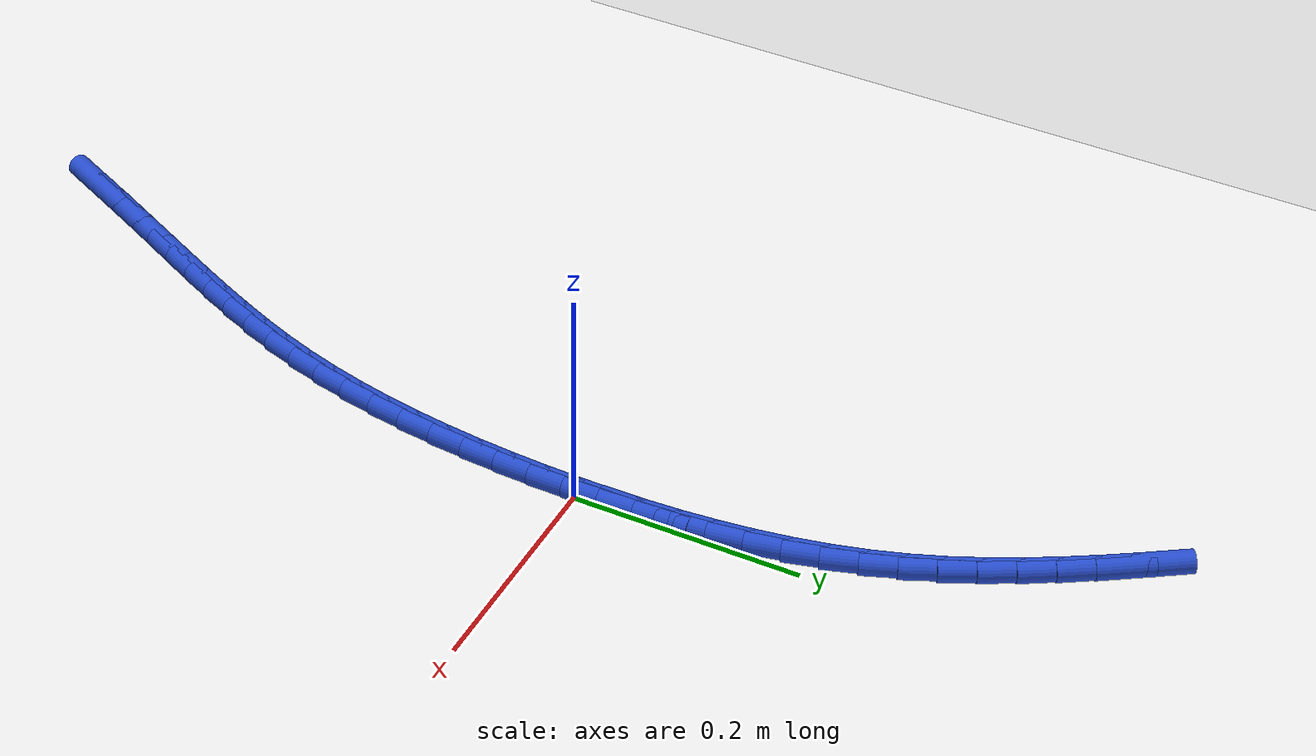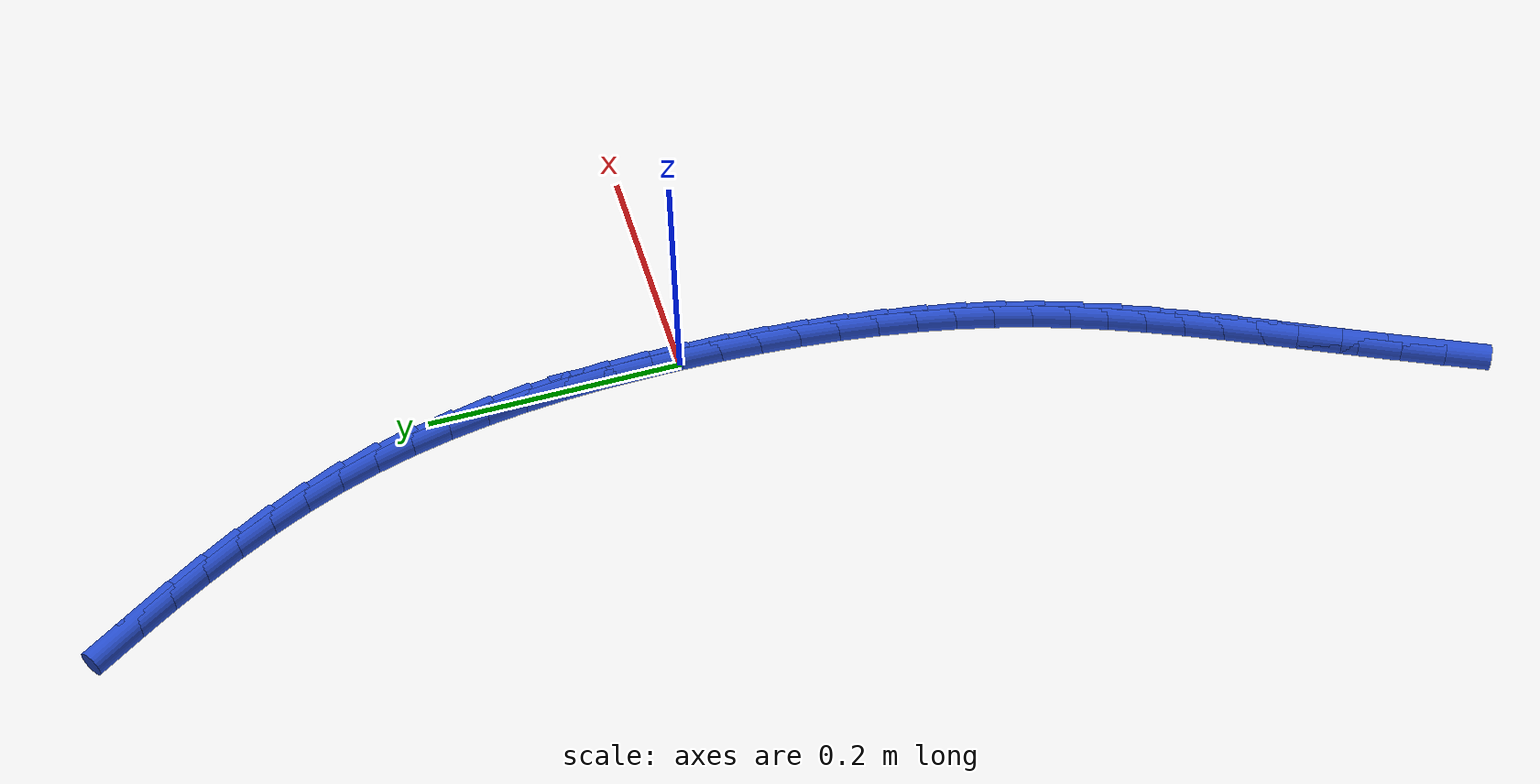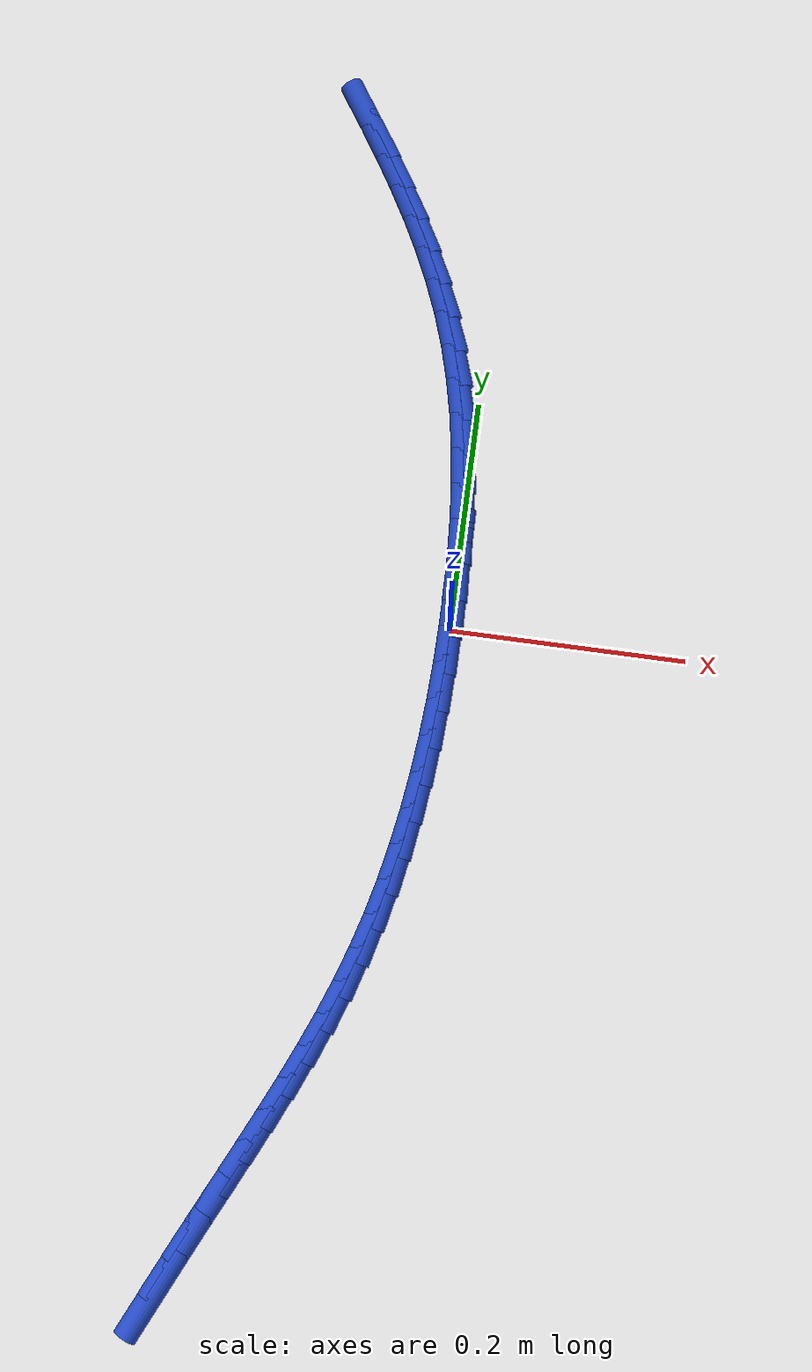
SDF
<sdf version="1.6">
 <world name="default">
  <model name="ground_plane">
   <static>1</static>
   <link name="link">
    <collision name="collision">
     <geometry><plane><normal>0 0 1</normal><size>100 100</size></plane></geometry>
     <surface><friction><ode><mu>100</mu><mu2>50</mu2></ode></friction></surface>
    </collision>
    <visual name="visual">
     <cast_shadows>0</cast_shadows>
     <geometry><plane><normal>0 0 1</normal><size>100 100</size></plane></geometry>
     <material>
      <script><uri>file://media/materials/scripts/gazebo.material</uri><name>Gazebo/WhiteGlow</name></script>
     </material>
    </visual>
   </link>
  </model>
  <model name="line">
   <link name="link_0">
    <pose>-1.951563910473908e-17 -4.163336342344337e-17 0.01 0 1.57 1.5705371974184643</pose>
    <collision name="collision">
     <geometry><cylinder><radius>0.01</radius><length>0.08</length></cylinder></geometry>
    </collision>
    <visual name="visual">
     <material>
      <script><name>Gazebo/Blue</name><uri>file://media/materials/scripts/gazebo.material</uri></script>
     </material>
     <geometry><cylinder><radius>0.01</radius><length>0.08</length></cylinder></geometry>
    </visual>
   </link>
   <link name="link_1">
    <pose>8.212343900721934e-06 0.031692059889147944 0.01 0 1.57 -1.544542658793325</pose>
    <collision name="collision">
     <geometry><cylinder><radius>0.01</radius><length>0.08</length></cylinder></geometry>
    </collision>
    <visual name="visual">
     <material>
      <script><name>Gazebo/Blue</name><uri>file://media/materials/scripts/gazebo.material</uri></script>
     </material>
     <geometry><cylinder><radius>0.01</radius><length>0.08</length></cylinder></geometry>
    </visual>
   </link>
   <link name="link_2">
    <pose>-0.0008220711203679883 0.06331022068938982 0.01 0 1.57 -1.5143118049299686</pose>
    <collision name="collision">
     <geometry><cylinder><radius>0.01</radius><length>0.08</length></cylinder></geometry>
    </collision>
    <visual name="visual">
     <material>
      <script><name>Gazebo/Blue</name><uri>file://media/materials/scripts/gazebo.material</uri></script>
     </material>
     <geometry><cylinder><radius>0.01</radius><length>0.08</length></cylinder></geometry>
    </visual>
   </link>
   <link name="link_3">
    <pose>-0.002601419941744138 0.09477824098731115 0.01 0 1.57 -1.4801734309110282</pose>
    <collision name="collision">
     <geometry><cylinder><radius>0.01</radius><length>0.08</length></cylinder></geometry>
    </collision>
    <visual name="visual">
     <material>
      <script><name>Gazebo/Blue</name><uri>file://media/materials/scripts/gazebo.material</uri></script>
     </material>
     <geometry><cylinder><radius>0.01</radius><length>0.08</length></cylinder></geometry>
    </visual>
   </link>
   <link name="link_4">
    <pose>-0.005440403669165712 0.12601987936949752 0.01 0 1.57 -1.4419308487469762</pose>
    <collision name="collision">
     <geometry><cylinder><radius>0.01</radius><length>0.08</length></cylinder></geometry>
    </collision>
    <visual name="visual">
     <material>
      <script><name>Gazebo/Blue</name><uri>file://media/materials/scripts/gazebo.material</uri></script>
     </material>
     <geometry><cylinder><radius>0.01</radius><length>0.08</length></cylinder></geometry>
    </visual>
   </link>
   <link name="link_5">
    <pose>-0.0094495918515707 0.15695889442253444 0.01 0 1.57 -1.3993947894230232</pose>
    <collision name="collision">
     <geometry><cylinder><radius>0.01</radius><length>0.08</length></cylinder></geometry>
    </collision>
    <visual name="visual">
     <material>
      <script><name>Gazebo/Blue</name><uri>file://media/materials/scripts/gazebo.material</uri></script>
     </material>
     <geometry><cylinder><radius>0.01</radius><length>0.08</length></cylinder></geometry>
    </visual>
   </link>
   <link name="link_6">
    <pose>-0.014739554037897094 0.18751904473300757 0.01 0 1.57 -1.3524029153831982</pose>
    <collision name="collision">
     <geometry><cylinder><radius>0.01</radius><length>0.08</length></cylinder></geometry>
    </collision>
    <visual name="visual">
     <material>
      <script><name>Gazebo/Blue</name><uri>file://media/materials/scripts/gazebo.material</uri></script>
     </material>
     <geometry><cylinder><radius>0.01</radius><length>0.08</length></cylinder></geometry>
    </visual>
   </link>
   <link name="link_7">
    <pose>-0.021420859777082874 0.2176240888875024 0.01 0 1.57 -1.3008447680953683</pose>
    <collision name="collision">
     <geometry><cylinder><radius>0.01</radius><length>0.08</length></cylinder></geometry>
    </collision>
    <visual name="visual">
     <material>
      <script><name>Gazebo/Blue</name><uri>file://media/materials/scripts/gazebo.material</uri></script>
     </material>
     <geometry><cylinder><radius>0.01</radius><length>0.08</length></cylinder></geometry>
    </visual>
   </link>
   <link name="link_8">
    <pose>-0.029604078618066028 0.24719778547260457 0.01 0 1.57 -1.2447116623426444</pose>
    <collision name="collision">
     <geometry><cylinder><radius>0.01</radius><length>0.08</length></cylinder></geometry>
    </collision>
    <visual name="visual">
     <material>
      <script><name>Gazebo/Blue</name><uri>file://media/materials/scripts/gazebo.material</uri></script>
     </material>
     <geometry><cylinder><radius>0.01</radius><length>0.08</length></cylinder></geometry>
    </visual>
   </link>
   <link name="link_9">
    <pose>-0.039399236199092365 0.2761641717820654 0.01 0 1.57 -1.1873448098321608</pose>
    <collision name="collision">
     <geometry><cylinder><radius>0.01</radius><length>0.08</length></cylinder></geometry>
    </collision>
    <visual name="visual">
     <material>
      <script><name>Gazebo/Blue</name><uri>file://media/materials/scripts/gazebo.material</uri></script>
     </material>
     <geometry><cylinder><radius>0.01</radius><length>0.08</length></cylinder></geometry>
    </visual>
   </link>
   <link name="link_10">
    <pose>-0.050827574350092074 0.3044927791290657 0.01 0 1.57 -1.1358392322446857</pose>
    <collision name="collision">
     <geometry><cylinder><radius>0.01</radius><length>0.08</length></cylinder></geometry>
    </collision>
    <visual name="visual">
     <material>
      <script><name>Gazebo/Blue</name><uri>file://media/materials/scripts/gazebo.material</uri></script>
     </material>
     <geometry><cylinder><radius>0.01</radius><length>0.08</length></cylinder></geometry>
    </visual>
   </link>
   <link name="link_11">
    <pose>-0.06372391498145809 0.3322486629049067 0.01 0 1.57 -1.0912678068649493</pose>
    <collision name="collision">
     <geometry><cylinder><radius>0.01</radius><length>0.08</length></cylinder></geometry>
    </collision>
    <visual name="visual">
     <material>
      <script><name>Gazebo/Blue</name><uri>file://media/materials/scripts/gazebo.material</uri></script>
     </material>
     <geometry><cylinder><radius>0.01</radius><length>0.08</length></cylinder></geometry>
    </visual>
   </link>
   <link name="link_12">
    <pose>-0.07789957081152395 0.3595089249276038 0.01 0 1.57 -1.0536705645381108</pose>
    <collision name="collision">
     <geometry><cylinder><radius>0.01</radius><length>0.08</length></cylinder></geometry>
    </collision>
    <visual name="visual">
     <material>
      <script><name>Gazebo/Blue</name><uri>file://media/materials/scripts/gazebo.material</uri></script>
     </material>
     <geometry><cylinder><radius>0.01</radius><length>0.08</length></cylinder></geometry>
    </visual>
   </link>
   <link name="link_13">
    <pose>-0.09316585455862321 0.3863506670151728 0.01 0 1.57 -1.0229730755737085</pose>
    <collision name="collision">
     <geometry><cylinder><radius>0.01</radius><length>0.08</length></cylinder></geometry>
    </collision>
    <visual name="visual">
     <material>
      <script><name>Gazebo/Blue</name><uri>file://media/materials/scripts/gazebo.material</uri></script>
     </material>
     <geometry><cylinder><radius>0.01</radius><length>0.08</length></cylinder></geometry>
    </visual>
   </link>
   <link name="link_14">
    <pose>-0.10933407894108954 0.4128509909856296 0.01 0 1.57 -0.9990416596619754</pose>
    <collision name="collision">
     <geometry><cylinder><radius>0.01</radius><length>0.08</length></cylinder></geometry>
    </collision>
    <visual name="visual">
     <material>
      <script><name>Gazebo/Blue</name><uri>file://media/materials/scripts/gazebo.material</uri></script>
     </material>
     <geometry><cylinder><radius>0.01</radius><length>0.08</length></cylinder></geometry>
    </visual>
   </link>
   <link name="link_15">
    <pose>-0.12621555667725648 0.4390869986569897 0.01 0 1.57 -0.9817265611187472</pose>
    <collision name="collision">
     <geometry><cylinder><radius>0.01</radius><length>0.08</length></cylinder></geometry>
    </collision>
    <visual name="visual">
     <material>
      <script><name>Gazebo/Blue</name><uri>file://media/materials/scripts/gazebo.material</uri></script>
     </material>
     <geometry><cylinder><radius>0.01</radius><length>0.08</length></cylinder></geometry>
    </visual>
   </link>
   <link name="link_211">
    <pose>-0.16684450024344066 -0.5647616107127897 0.01 0 1.57 1.131905467751223</pose>
    <collision name="collision">
     <geometry><cylinder><radius>0.01</radius><length>0.08</length></cylinder></geometry>
    </collision>
    <visual name="visual">
     <material>
      <script><name>Gazebo/Blue</name><uri>file://media/materials/scripts/gazebo.material</uri></script>
     </material>
     <geometry><cylinder><radius>0.01</radius><length>0.08</length></cylinder></geometry>
    </visual>
   </link>
   <link name="link_212">
    <pose>-0.15206288371631937 -0.5332729244243486 0.01 0 1.57 1.1263343430031896</pose>
    <collision name="collision">
     <geometry><cylinder><radius>0.01</radius><length>0.08</length></cylinder></geometry>
    </collision>
    <visual name="visual">
     <material>
      <script><name>Gazebo/Blue</name><uri>file://media/materials/scripts/gazebo.material</uri></script>
     </material>
     <geometry><cylinder><radius>0.01</radius><length>0.08</length></cylinder></geometry>
    </visual>
   </link>
   <link name="link_213">
    <pose>-0.13750055479991677 -0.5026954032184182 0.01 0 1.57 1.1204173390378642</pose>
    <collision name="collision">
     <geometry><cylinder><radius>0.01</radius><length>0.08</length></cylinder></geometry>
    </collision>
    <visual name="visual">
     <material>
      <script><name>Gazebo/Blue</name><uri>file://media/materials/scripts/gazebo.material</uri></script>
     </material>
     <geometry><cylinder><radius>0.01</radius><length>0.08</length></cylinder></geometry>
    </visual>
   </link>
   <link name="link_214">
    <pose>-0.12317836683817429 -0.4730748875137646 0.01 0 1.57 1.1198262063792375</pose>
    <collision name="collision">
     <geometry><cylinder><radius>0.01</radius><length>0.08</length></cylinder></geometry>
    </collision>
    <visual name="visual">
     <material>
      <script><name>Gazebo/Blue</name><uri>file://media/materials/scripts/gazebo.material</uri></script>
     </material>
     <geometry><cylinder><radius>0.01</radius><length>0.08</length></cylinder></geometry>
    </visual>
   </link>
   <link name="link_215">
    <pose>-0.10920619134921244 -0.4442217860261319 0.01 0 1.57 1.1251882159066409</pose>
    <collision name="collision">
     <geometry><cylinder><radius>0.01</radius><length>0.08</length></cylinder></geometry>
    </collision>
    <visual name="visual">
     <material>
      <script><name>Gazebo/Blue</name><uri>file://media/materials/scripts/gazebo.material</uri></script>
     </material>
     <geometry><cylinder><radius>0.01</radius><length>0.08</length></cylinder></geometry>
    </visual>
   </link>
   <link name="link_216">
    <pose>-0.09569682060922814 -0.4159387827672495 0.01 0 1.57 1.1368497751191253</pose>
    <collision name="collision">
     <geometry><cylinder><radius>0.01</radius><length>0.08</length></cylinder></geometry>
    </collision>
    <visual name="visual">
     <material>
      <script><name>Gazebo/Blue</name><uri>file://media/materials/scripts/gazebo.material</uri></script>
     </material>
     <geometry><cylinder><radius>0.01</radius><length>0.08</length></cylinder></geometry>
    </visual>
   </link>
   <link name="link_217">
    <pose>-0.08276304689441714 -0.3880285617488439 0.01 0 1.57 1.1550186541389371</pose>
    <collision name="collision">
     <geometry><cylinder><radius>0.01</radius><length>0.08</length></cylinder></geometry>
    </collision>
    <visual name="visual">
     <material>
      <script><name>Gazebo/Blue</name><uri>file://media/materials/scripts/gazebo.material</uri></script>
     </material>
     <geometry><cylinder><radius>0.01</radius><length>0.08</length></cylinder></geometry>
    </visual>
   </link>
   <link name="link_218">
    <pose>-0.07051766248097559 -0.36029380698264296 0.01 0 1.57 1.1797269103388053</pose>
    <collision name="collision">
     <geometry><cylinder><radius>0.01</radius><length>0.08</length></cylinder></geometry>
    </collision>
    <visual name="visual">
     <material>
      <script><name>Gazebo/Blue</name><uri>file://media/materials/scripts/gazebo.material</uri></script>
     </material>
     <geometry><cylinder><radius>0.01</radius><length>0.08</length></cylinder></geometry>
    </visual>
   </link>
   <link name="link_219">
    <pose>-0.059073459645099365 -0.33253720248037333 0.01 0 1.57 1.2107941573119678</pose>
    <collision name="collision">
     <geometry><cylinder><radius>0.01</radius><length>0.08</length></cylinder></geometry>
    </collision>
    <visual name="visual">
     <material>
      <script><name>Gazebo/Blue</name><uri>file://media/materials/scripts/gazebo.material</uri></script>
     </material>
     <geometry><cylinder><radius>0.01</radius><length>0.08</length></cylinder></geometry>
    </visual>
   </link>
   <link name="link_220">
    <pose>-0.04854323066298516 -0.30456143225376386 0.01 0 1.57 1.2477980296532662</pose>
    <collision name="collision">
     <geometry><cylinder><radius>0.01</radius><length>0.08</length></cylinder></geometry>
    </collision>
    <visual name="visual">
     <material>
      <script><name>Gazebo/Blue</name><uri>file://media/materials/scripts/gazebo.material</uri></script>
     </material>
     <geometry><cylinder><radius>0.01</radius><length>0.08</length></cylinder></geometry>
    </visual>
   </link>
   <link name="link_221">
    <pose>-0.039039767810828886 -0.2761691803145417 0.01 0 1.57 1.2894584269627019</pose>
    <collision name="collision">
     <geometry><cylinder><radius>0.01</radius><length>0.08</length></cylinder></geometry>
    </collision>
    <visual name="visual">
     <material>
      <script><name>Gazebo/Blue</name><uri>file://media/materials/scripts/gazebo.material</uri></script>
     </material>
     <geometry><cylinder><radius>0.01</radius><length>0.08</length></cylinder></geometry>
    </visual>
   </link>
   <link name="link_222">
    <pose>-0.030663094926508185 -0.24718449518370067 0.01 0 1.57 1.3304297999846177</pose>
    <collision name="collision">
     <geometry><cylinder><radius>0.01</radius><length>0.08</length></cylinder></geometry>
    </collision>
    <visual name="visual">
     <material>
      <script><name>Gazebo/Blue</name><uri>file://media/materials/scripts/gazebo.material</uri></script>
     </material>
     <geometry><cylinder><radius>0.01</radius><length>0.08</length></cylinder></geometry>
    </visual>
   </link>
   <link name="link_223">
    <pose>-0.02341198646264128 -0.21760083869462668 0.01 0 1.57 1.3685100285019347</pose>
    <collision name="collision">
     <geometry><cylinder><radius>0.01</radius><length>0.08</length></cylinder></geometry>
    </collision>
    <visual name="visual">
     <material>
      <script><name>Gazebo/Blue</name><uri>file://media/materials/scripts/gazebo.material</uri></script>
     </material>
     <geometry><cylinder><radius>0.01</radius><length>0.08</length></cylinder></geometry>
    </visual>
   </link>
   <link name="link_224">
    <pose>-0.01723699613430328 -0.1874923569718011 0.01 0 1.57 1.4038809896141797</pose>
    <collision name="collision">
     <geometry><cylinder><radius>0.01</radius><length>0.08</length></cylinder></geometry>
    </collision>
    <visual name="visual">
     <material>
      <script><name>Gazebo/Blue</name><uri>file://media/materials/scripts/gazebo.material</uri></script>
     </material>
     <geometry><cylinder><radius>0.01</radius><length>0.08</length></cylinder></geometry>
    </visual>
   </link>
   <link name="link_225">
    <pose>-0.01208838224488009 -0.1569336904308295 0.01 0 1.57 1.436739016881151</pose>
    <collision name="collision">
     <geometry><cylinder><radius>0.01</radius><length>0.08</length></cylinder></geometry>
    </collision>
    <visual name="visual">
     <material>
      <script><name>Gazebo/Blue</name><uri>file://media/materials/scripts/gazebo.material</uri></script>
     </material>
     <geometry><cylinder><radius>0.01</radius><length>0.08</length></cylinder></geometry>
    </visual>
   </link>
   <link name="link_226">
    <pose>-0.007916403097757813 -0.1259994794873181 0.01 0 1.57 1.4672754735046025</pose>
    <collision name="collision">
     <geometry><cylinder><radius>0.01</radius><length>0.08</length></cylinder></geometry>
    </collision>
    <visual name="visual">
     <material>
      <script><name>Gazebo/Blue</name><uri>file://media/materials/scripts/gazebo.material</uri></script>
     </material>
     <geometry><cylinder><radius>0.01</radius><length>0.08</length></cylinder></geometry>
    </visual>
   </link>
   <link name="link_227">
    <pose>-0.0046713169963225575 -0.09476436455687326 0.01 0 1.57 1.4956731530786842</pose>
    <collision name="collision">
     <geometry><cylinder><radius>0.01</radius><length>0.08</length></cylinder></geometry>
    </collision>
    <visual name="visual">
     <material>
      <script><name>Gazebo/Blue</name><uri>file://media/materials/scripts/gazebo.material</uri></script>
     </material>
     <geometry><cylinder><radius>0.01</radius><length>0.08</length></cylinder></geometry>
    </visual>
   </link>
   <link name="link_228">
    <pose>-0.002303382243960388 -0.06330298605510047 0.01 0 1.57 1.5221041010378393</pose>
    <collision name="collision">
     <geometry><cylinder><radius>0.01</radius><length>0.08</length></cylinder></geometry>
    </collision>
    <visual name="visual">
     <material>
      <script><name>Gazebo/Blue</name><uri>file://media/materials/scripts/gazebo.material</uri></script>
     </material>
     <geometry><cylinder><radius>0.01</radius><length>0.08</length></cylinder></geometry>
    </visual>
   </link>
   <link name="link_229">
    <pose>-0.0007628571440575274 -0.03168998439760753 0.01 0 1.57 1.5467284752339663</pose>
    <collision name="collision">
     <geometry><cylinder><radius>0.01</radius><length>0.08</length></cylinder></geometry>
    </collision>
    <visual name="visual">
     <material>
      <script><name>Gazebo/Blue</name><uri>file://media/materials/scripts/gazebo.material</uri></script>
     </material>
     <geometry><cylinder><radius>0.01</radius><length>0.08</length></cylinder></geometry>
    </visual>
   </link>
   <link name="link_230">
    <pose>-1.3444106938820255e-17 -2.0816681711721685e-17 0.01 0 1.57 1.5696941397895856</pose>
    <collision name="collision">
     <geometry><cylinder><radius>0.01</radius><length>0.08</length></cylinder></geometry>
    </collision>
    <visual name="visual">
     <material>
      <script><name>Gazebo/Blue</name><uri>file://media/materials/scripts/gazebo.material</uri></script>
     </material>
     <geometry><cylinder><radius>0.01</radius><length>0.08</length></cylinder></geometry>
    </visual>
   </link>
   <link name="link_231">
    <pose>3.493088482604259e-05 0.031692326722115804 0.01 0 1.57 -1.5504558972818105</pose>
    <collision name="collision">
     <geometry><cylinder><radius>0.01</radius><length>0.08</length></cylinder></geometry>
    </collision>
    <visual name="visual">
     <material>
      <script><name>Gazebo/Blue</name><uri>file://media/materials/scripts/gazebo.material</uri></script>
     </material>
     <geometry><cylinder><radius>0.01</radius><length>0.08</length></cylinder></geometry>
    </visual>
   </link>
   <link name="link_232">
    <pose>-0.0006083227929654647 0.06331235535313365 0.01 0 1.57 -1.561188343160647</pose>
    <collision name="collision">
     <geometry><cylinder><radius>0.01</radius><length>0.08</length></cylinder></geometry>
    </collision>
    <visual name="visual">
     <material>
      <script><name>Gazebo/Blue</name><uri>file://media/materials/scripts/gazebo.material</uri></script>
     </material>
     <geometry><cylinder><radius>0.01</radius><length>0.08</length></cylinder></geometry>
    </visual>
   </link>
  </model>
 </world>
</sdf>
